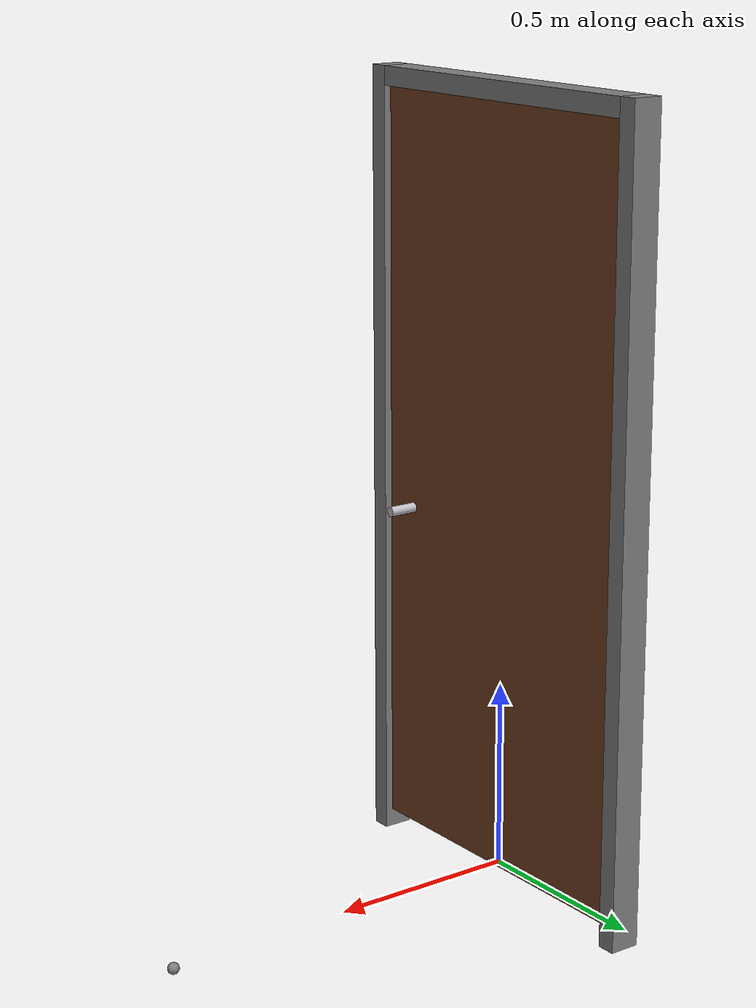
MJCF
<mujoco model="doordog_materialized_door">
  <compiler angle="radian" coordinate="local" />
  <option timestep="0.005" gravity="0 0 -9.81" />
  <default>
    <default class="door">
      <geom friction="1 0.005 0.0001" condim="4" density="0" />
    </default>
  </default>
  <worldbody>
    <body name="door_root" childclass="door">
      <geom name="door_frame_left" type="box" pos="0 0.475 1" size="0.04 0.025 1.05" />
      <geom name="door_frame_right" type="box" pos="0 -0.475 1" size="0.04 0.025 1.05" />
      <geom name="door_frame_top" type="box" pos="0 0 2.025" size="0.04 0.45 0.025" />
      <body name="door_panel" pos="0 0.45 0">
        <joint name="door_hinge" type="hinge" axis="0 0 1" range="0 2.61799387799" damping="0" frictionloss="0.75" limited="true" solreflimit="-10000 -100" />
        <inertial pos="0 -0.45 1" mass="100" diaginertia="40.0833333333 33.3466666667 6.76333333333" />
        <geom name="door_panel_collision" type="box" pos="0 -0.45 1" size="0.02 0.45 1" mass="0" rgba="0.45 0.25 0.12 1" />
        <body name="door_handle" pos="0 -0.8 0.9">
          <joint name="handle_hinge" type="hinge" axis="1 0 0" range="0 0.785398163397" damping="0" frictionloss="0" limited="true" solreflimit="-10000 -100" />
          <geom name="handle_axle" type="cylinder" pos="0 0 0" quat="0.707106781187 0 0.707106781187 0" size="0.013 0.0975" mass="0.2" rgba="0.75 0.75 0.78 1" />
          <geom name="handle_lever" type="capsule" fromto="0 0 0 0 -0.125 0" size="0.013" mass="0.05" rgba="0.8 0.8 0.82 1" />
          <site name="door_grasp_target" pos="0 -0.125 0" size="0.012" rgba="1 1 0 1" />
          <site name="door_handle_center" pos="0 0 0" size="0.01" />
        </body>
        <site name="door_pregrasp_target" pos="-0.16 -0.8 0.9" size="0.012" />
      </body>
      <site name="door_hinge_axis" pos="0 0.45 1" size="0.01 1" type="cylinder" />
      <site name="door_passage_center" pos="0 0 1" size="0.015" />
      <site name="door_goal" pos="1 0 0" size="0.015" />
    </body>
  </worldbody>
  <contact>
    <exclude name="exclude_panel_handle_self_collision" body1="door_panel" body2="door_handle" />
    <exclude name="exclude_frame_panel_self_collision" body1="door_root" body2="door_panel" />
    <exclude name="exclude_frame_handle_self_collision" body1="door_root" body2="door_handle" />
  </contact>
  <equality>
    <joint name="door_constraint_gate" joint1="door_hinge" polycoef="0 0 0 0 0" active="true" />
  </equality>
  <actuator>
    <position name="door_hinge_capped_position" joint="door_hinge" kp="2" kv="50" ctrlrange="-0.174532925199 2.61799387799" ctrllimited="true" forcerange="-4.5 4.5" forcelimited="true" />
    <position name="handle_capped_position" joint="handle_hinge" kp="50" kv="0.5" ctrlrange="-0.261799387799 0.785398163397" ctrllimited="true" forcerange="-2 2" forcelimited="true" />
  </actuator>
  <keyframe>
    <key name="door_closed" qpos="0 0" ctrl="-0.174532925199 -0.261799387799" />
  </keyframe>
</mujoco>
